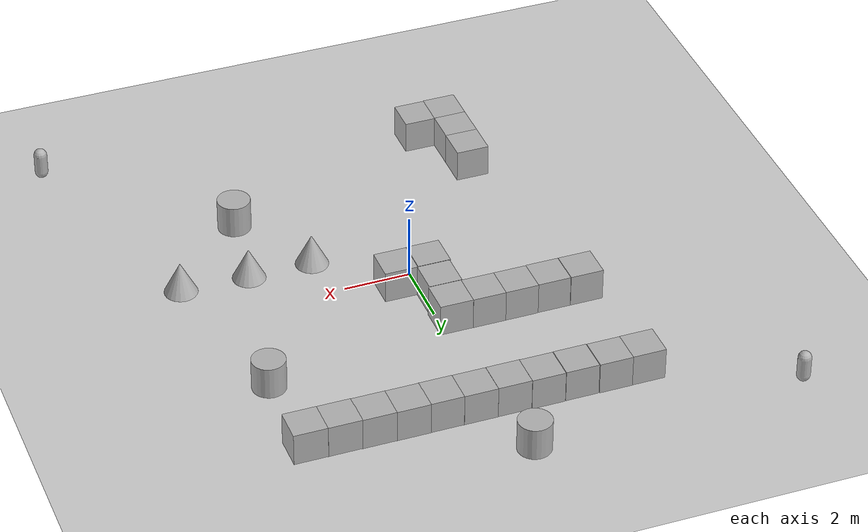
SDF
<sdf version='1.10'>
  <world name='empty'>
    <physics name='1ms' type='ignored'>
      <max_step_size>0.001</max_step_size>
      <real_time_factor>1</real_time_factor>
      <real_time_update_rate>1000</real_time_update_rate>
    </physics>
    <plugin name='gz::sim::systems::Physics' filename='gz-sim-physics-system'/>
    <plugin name='gz::sim::systems::UserCommands' filename='gz-sim-user-commands-system'/>
    <plugin name='gz::sim::systems::SceneBroadcaster' filename='gz-sim-scene-broadcaster-system'/>
    <plugin name='gz::sim::systems::Contact' filename='gz-sim-contact-system'/>
    <gravity>0 0 -9.8000000000000007</gravity>
    <magnetic_field>5.5644999999999998e-06 2.2875799999999999e-05 -4.2388400000000002e-05</magnetic_field>
    <atmosphere type='adiabatic'/>
    <scene>
      <ambient>0.400000006 0.400000006 0.400000006 1</ambient>
      <background>0.699999988 0.699999988 0.699999988 1</background>
      <shadows>true</shadows>
    </scene>
    <model name='ground_plane'>
      <static>true</static>
      <link name='link'>
        <collision name='collision'>
          <geometry>
            <plane>
              <normal>0 0 1</normal>
              <size>100 100</size>
            </plane>
          </geometry>
          <surface>
            <friction>
              <ode/>
            </friction>
            <bounce/>
            <contact/>
          </surface>
        </collision>
        <visual name='visual'>
          <geometry>
            <plane>
              <normal>0 0 1</normal>
              <size>100 100</size>
            </plane>
          </geometry>
          <material>
            <ambient>0.800000012 0.800000012 0.800000012 1</ambient>
            <diffuse>0.800000012 0.800000012 0.800000012 1</diffuse>
            <specular>0.800000012 0.800000012 0.800000012 1</specular>
          </material>
        </visual>
        <pose>0 0 0 0 0 0</pose>
        <inertial>
          <pose>0 0 0 0 0 0</pose>
          <mass>1</mass>
          <inertia>
            <ixx>1</ixx>
            <ixy>0</ixy>
            <ixz>0</ixz>
            <iyy>1</iyy>
            <iyz>0</iyz>
            <izz>1</izz>
          </inertia>
        </inertial>
        <enable_wind>false</enable_wind>
      </link>
      <pose>0 0 0 0 0 0</pose>
      <self_collide>false</self_collide>
    </model>
    <model name='box'>
      <pose>-0.33596545250959059 2.4811201095920628 0.49999999019962721 2.242095437672319e-13 2.3869852777294511e-15 -5.1521001636314449e-08</pose>
      <link name='box_link'>
        <inertial>
          <inertia>
            <ixx>0.16666</ixx>
            <ixy>0</ixy>
            <ixz>0</ixz>
            <iyy>0.16666</iyy>
            <iyz>0</iyz>
            <izz>0.16666</izz>
          </inertia>
          <mass>1</mass>
          <pose>0 0 0 0 0 0</pose>
        </inertial>
        <collision name='box_collision'>
          <geometry>
            <box>
              <size>1 1 1</size>
            </box>
          </geometry>
          <surface>
            <friction>
              <ode/>
            </friction>
            <bounce/>
            <contact/>
          </surface>
        </collision>
        <visual name='box_visual'>
          <geometry>
            <box>
              <size>1 1 1</size>
            </box>
          </geometry>
          <material>
            <ambient>0.300000012 0.300000012 0.300000012 1</ambient>
            <diffuse>0.699999988 0.699999988 0.699999988 1</diffuse>
            <specular>1 1 1 1</specular>
          </material>
        </visual>
        <pose>0 0 0 0 0 0</pose>
        <enable_wind>false</enable_wind>
      </link>
      <static>false</static>
      <self_collide>false</self_collide>
    </model>
    <model name='box_0'>
      <pose>-1.3359654523157329 2.4851484393053793 0.49999999019962615 2.2420955115424631e-13 -1.0557012305219179e-13 -5.1548484183742544e-08</pose>
      <link name='box_link'>
        <inertial>
          <inertia>
            <ixx>0.16666</ixx>
            <ixy>0</ixy>
            <ixz>0</ixz>
            <iyy>0.16666</iyy>
            <iyz>0</iyz>
            <izz>0.16666</izz>
          </inertia>
          <mass>1</mass>
          <pose>0 0 0 0 0 0</pose>
        </inertial>
        <collision name='box_collision'>
          <geometry>
            <box>
              <size>1 1 1</size>
            </box>
          </geometry>
          <surface>
            <friction>
              <ode/>
            </friction>
            <bounce/>
            <contact/>
          </surface>
        </collision>
        <visual name='box_visual'>
          <geometry>
            <box>
              <size>1 1 1</size>
            </box>
          </geometry>
          <material>
            <ambient>0.300000012 0.300000012 0.300000012 1</ambient>
            <diffuse>0.699999988 0.699999988 0.699999988 1</diffuse>
            <specular>1 1 1 1</specular>
          </material>
        </visual>
        <pose>0 0 0 0 0 0</pose>
        <enable_wind>false</enable_wind>
      </link>
      <static>false</static>
      <self_collide>false</self_collide>
    </model>
    <model name='box_1'>
      <pose>-0.37296743716899705 1.4691642643551788 0.49999999019962726 2.1770754439004316e-17 -3.3586261480345174e-17 2.3976945545769711e-19</pose>
      <link name='box_link'>
        <inertial>
          <inertia>
            <ixx>0.16666</ixx>
            <ixy>0</ixy>
            <ixz>0</ixz>
            <iyy>0.16666</iyy>
            <iyz>0</iyz>
            <izz>0.16666</izz>
          </inertia>
          <mass>1</mass>
          <pose>0 0 0 0 0 0</pose>
        </inertial>
        <collision name='box_collision'>
          <geometry>
            <box>
              <size>1 1 1</size>
            </box>
          </geometry>
          <surface>
            <friction>
              <ode/>
            </friction>
            <bounce/>
            <contact/>
          </surface>
        </collision>
        <visual name='box_visual'>
          <geometry>
            <box>
              <size>1 1 1</size>
            </box>
          </geometry>
          <material>
            <ambient>0.300000012 0.300000012 0.300000012 1</ambient>
            <diffuse>0.699999988 0.699999988 0.699999988 1</diffuse>
            <specular>1 1 1 1</specular>
          </material>
        </visual>
        <pose>0 0 0 0 0 0</pose>
        <enable_wind>false</enable_wind>
      </link>
      <static>false</static>
      <self_collide>false</self_collide>
    </model>
    <model name='capsule'>
      <pose>8.7592671357249792 -8.5141444132661235 0.49999999020000274 0 0 0</pose>
      <link name='capsule_link'>
        <inertial>
          <inertia>
            <ixx>0.074153999999999998</ixx>
            <ixy>0</ixy>
            <ixz>0</ixz>
            <iyy>0.074153999999999998</iyy>
            <iyz>0</iyz>
            <izz>0.018769000000000001</izz>
          </inertia>
          <mass>1</mass>
          <pose>0 0 0 0 0 0</pose>
        </inertial>
        <collision name='capsule_collision'>
          <geometry>
            <capsule>
              <radius>0.20000000000000001</radius>
              <length>0.59999999999999998</length>
            </capsule>
          </geometry>
          <surface>
            <friction>
              <ode/>
            </friction>
            <bounce/>
            <contact/>
          </surface>
        </collision>
        <visual name='capsule_visual'>
          <geometry>
            <capsule>
              <radius>0.20000000000000001</radius>
              <length>0.59999999999999998</length>
            </capsule>
          </geometry>
          <material>
            <ambient>0.300000012 0.300000012 0.300000012 1</ambient>
            <diffuse>0.699999988 0.699999988 0.699999988 1</diffuse>
            <specular>1 1 1 1</specular>
          </material>
        </visual>
        <pose>0 0 0 0 0 0</pose>
        <enable_wind>false</enable_wind>
      </link>
      <static>false</static>
      <self_collide>false</self_collide>
    </model>
    <model name='capsule_0'>
      <pose>-8.6555289183120294 8.4008671048290537 0.49999999020000274 0 0 0</pose>
      <link name='capsule_link'>
        <inertial>
          <inertia>
            <ixx>0.074153999999999998</ixx>
            <ixy>0</ixy>
            <ixz>0</ixz>
            <iyy>0.074153999999999998</iyy>
            <iyz>0</iyz>
            <izz>0.018769000000000001</izz>
          </inertia>
          <mass>1</mass>
          <pose>0 0 0 0 0 0</pose>
        </inertial>
        <collision name='capsule_collision'>
          <geometry>
            <capsule>
              <radius>0.20000000000000001</radius>
              <length>0.59999999999999998</length>
            </capsule>
          </geometry>
          <surface>
            <friction>
              <ode/>
            </friction>
            <bounce/>
            <contact/>
          </surface>
        </collision>
        <visual name='capsule_visual'>
          <geometry>
            <capsule>
              <radius>0.20000000000000001</radius>
              <length>0.59999999999999998</length>
            </capsule>
          </geometry>
          <material>
            <ambient>0.300000012 0.300000012 0.300000012 1</ambient>
            <diffuse>0.699999988 0.699999988 0.699999988 1</diffuse>
            <specular>1 1 1 1</specular>
          </material>
        </visual>
        <pose>0 0 0 0 0 0</pose>
        <enable_wind>false</enable_wind>
      </link>
      <static>false</static>
      <self_collide>false</self_collide>
    </model>
    <model name='cone'>
      <pose>2.4977511326347646 -1.5118125709814809 0.49999999602630424 2.1489554703592614e-09 -8.0147334127969046e-09 -5.1492329993293282e-14</pose>
      <link name='cone_link'>
        <inertial>
          <inertia>
            <ixx>0.074999999999999997</ixx>
            <ixy>0</ixy>
            <ixz>0</ixz>
            <iyy>0.074999999999999997</iyy>
            <iyz>0</iyz>
            <izz>0.074999999999999997</izz>
          </inertia>
          <mass>1</mass>
          <pose>0 0 0 0 0 0</pose>
        </inertial>
        <collision name='cone_collision'>
          <geometry>
            <cone>
              <radius>0.5</radius>
              <length>1</length>
            </cone>
          </geometry>
          <surface>
            <friction>
              <ode/>
            </friction>
            <bounce/>
            <contact/>
          </surface>
        </collision>
        <visual name='cone_visual'>
          <geometry>
            <cone>
              <radius>0.5</radius>
              <length>1</length>
            </cone>
          </geometry>
          <material>
            <ambient>0.300000012 0.300000012 0.300000012 1</ambient>
            <diffuse>0.699999988 0.699999988 0.699999988 1</diffuse>
            <specular>1 1 1 1</specular>
          </material>
        </visual>
        <pose>0 0 0 0 0 0</pose>
        <enable_wind>false</enable_wind>
      </link>
      <static>false</static>
      <self_collide>false</self_collide>
    </model>
    <model name='cone_0'>
      <pose>4.4396736091283202 -1.4943664519272066 0.49999999602630363 2.1494453750432996e-09 -8.0146077728528373e-09 -4.82051379767119e-14</pose>
      <link name='cone_link'>
        <inertial>
          <inertia>
            <ixx>0.074999999999999997</ixx>
            <ixy>0</ixy>
            <ixz>0</ixz>
            <iyy>0.074999999999999997</iyy>
            <iyz>0</iyz>
            <izz>0.074999999999999997</izz>
          </inertia>
          <mass>1</mass>
          <pose>0 0 0 0 0 0</pose>
        </inertial>
        <collision name='cone_collision'>
          <geometry>
            <cone>
              <radius>0.5</radius>
              <length>1</length>
            </cone>
          </geometry>
          <surface>
            <friction>
              <ode/>
            </friction>
            <bounce/>
            <contact/>
          </surface>
        </collision>
        <visual name='cone_visual'>
          <geometry>
            <cone>
              <radius>0.5</radius>
              <length>1</length>
            </cone>
          </geometry>
          <material>
            <ambient>0.300000012 0.300000012 0.300000012 1</ambient>
            <diffuse>0.699999988 0.699999988 0.699999988 1</diffuse>
            <specular>1 1 1 1</specular>
          </material>
        </visual>
        <pose>0 0 0 0 0 0</pose>
        <enable_wind>false</enable_wind>
      </link>
      <static>false</static>
      <self_collide>false</self_collide>
    </model>
    <model name='cone_1'>
      <pose>6.5001473864445005 -1.5436023458058492 0.49999999602630363 2.1494771420297308e-09 -8.0145996413770159e-09 -4.7070557221802464e-14</pose>
      <link name='cone_link'>
        <inertial>
          <inertia>
            <ixx>0.074999999999999997</ixx>
            <ixy>0</ixy>
            <ixz>0</ixz>
            <iyy>0.074999999999999997</iyy>
            <iyz>0</iyz>
            <izz>0.074999999999999997</izz>
          </inertia>
          <mass>1</mass>
          <pose>0 0 0 0 0 0</pose>
        </inertial>
        <collision name='cone_collision'>
          <geometry>
            <cone>
              <radius>0.5</radius>
              <length>1</length>
            </cone>
          </geometry>
          <surface>
            <friction>
              <ode/>
            </friction>
            <bounce/>
            <contact/>
          </surface>
        </collision>
        <visual name='cone_visual'>
          <geometry>
            <cone>
              <radius>0.5</radius>
              <length>1</length>
            </cone>
          </geometry>
          <material>
            <ambient>0.300000012 0.300000012 0.300000012 1</ambient>
            <diffuse>0.699999988 0.699999988 0.699999988 1</diffuse>
            <specular>1 1 1 1</specular>
          </material>
        </visual>
        <pose>0 0 0 0 0 0</pose>
        <enable_wind>false</enable_wind>
      </link>
      <static>false</static>
      <self_collide>false</self_collide>
    </model>
    <model name='box_2'>
      <pose>-2.3359654524921076 2.4833659230877334 0.49999999019962782 2.2305660428055508e-13 -2.2569622019433922e-13 -5.1717338985230688e-08</pose>
      <link name='box_link'>
        <inertial>
          <inertia>
            <ixx>0.16666</ixx>
            <ixy>0</ixy>
            <ixz>0</ixz>
            <iyy>0.16666</iyy>
            <iyz>0</iyz>
            <izz>0.16666</izz>
          </inertia>
          <mass>1</mass>
          <pose>0 0 0 0 0 0</pose>
        </inertial>
        <collision name='box_collision'>
          <geometry>
            <box>
              <size>1 1 1</size>
            </box>
          </geometry>
          <surface>
            <friction>
              <ode/>
            </friction>
            <bounce/>
            <contact/>
          </surface>
        </collision>
        <visual name='box_visual'>
          <geometry>
            <box>
              <size>1 1 1</size>
            </box>
          </geometry>
          <material>
            <ambient>0.300000012 0.300000012 0.300000012 1</ambient>
            <diffuse>0.699999988 0.699999988 0.699999988 1</diffuse>
            <specular>1 1 1 1</specular>
          </material>
        </visual>
        <pose>0 0 0 0 0 0</pose>
        <enable_wind>false</enable_wind>
      </link>
      <static>false</static>
      <self_collide>false</self_collide>
    </model>
    <model name='box_3'>
      <pose>-3.3359654531370913 2.4712875754110573 0.49999999019962715 2.2370993964954966e-13 -2.2376543762439209e-13 -5.1749545389140747e-08</pose>
      <link name='box_link'>
        <inertial>
          <inertia>
            <ixx>0.16666</ixx>
            <ixy>0</ixy>
            <ixz>0</ixz>
            <iyy>0.16666</iyy>
            <iyz>0</iyz>
            <izz>0.16666</izz>
          </inertia>
          <mass>1</mass>
          <pose>0 0 0 0 0 0</pose>
        </inertial>
        <collision name='box_collision'>
          <geometry>
            <box>
              <size>1 1 1</size>
            </box>
          </geometry>
          <surface>
            <friction>
              <ode/>
            </friction>
            <bounce/>
            <contact/>
          </surface>
        </collision>
        <visual name='box_visual'>
          <geometry>
            <box>
              <size>1 1 1</size>
            </box>
          </geometry>
          <material>
            <ambient>0.300000012 0.300000012 0.300000012 1</ambient>
            <diffuse>0.699999988 0.699999988 0.699999988 1</diffuse>
            <specular>1 1 1 1</specular>
          </material>
        </visual>
        <pose>0 0 0 0 0 0</pose>
        <enable_wind>false</enable_wind>
      </link>
      <static>false</static>
      <self_collide>false</self_collide>
    </model>
    <model name='box_4'>
      <pose>-4.3463044166564941 2.4707798957824707 0.49999999019962754 2.5230195981435039e-17 -2.9315716895362591e-17 2.5538054207492607e-18</pose>
      <link name='box_link'>
        <inertial>
          <inertia>
            <ixx>0.16666</ixx>
            <ixy>0</ixy>
            <ixz>0</ixz>
            <iyy>0.16666</iyy>
            <iyz>0</iyz>
            <izz>0.16666</izz>
          </inertia>
          <mass>1</mass>
          <pose>0 0 0 0 0 0</pose>
        </inertial>
        <collision name='box_collision'>
          <geometry>
            <box>
              <size>1 1 1</size>
            </box>
          </geometry>
          <surface>
            <friction>
              <ode/>
            </friction>
            <bounce/>
            <contact/>
          </surface>
        </collision>
        <visual name='box_visual'>
          <geometry>
            <box>
              <size>1 1 1</size>
            </box>
          </geometry>
          <material>
            <ambient>0.300000012 0.300000012 0.300000012 1</ambient>
            <diffuse>0.699999988 0.699999988 0.699999988 1</diffuse>
            <specular>1 1 1 1</specular>
          </material>
        </visual>
        <pose>0 0 0 0 0 0</pose>
        <enable_wind>false</enable_wind>
      </link>
      <static>false</static>
      <self_collide>false</self_collide>
    </model>
    <model name='box_5'>
      <pose>-0.40728089213371277 0.45353400707244873 0.49999999019962704 2.3358805604223399e-17 -3.120199778265037e-17 3.6852881630897788e-18</pose>
      <link name='box_link'>
        <inertial>
          <inertia>
            <ixx>0.16666</ixx>
            <ixy>0</ixy>
            <ixz>0</ixz>
            <iyy>0.16666</iyy>
            <iyz>0</iyz>
            <izz>0.16666</izz>
          </inertia>
          <mass>1</mass>
          <pose>0 0 0 0 0 0</pose>
        </inertial>
        <collision name='box_collision'>
          <geometry>
            <box>
              <size>1 1 1</size>
            </box>
          </geometry>
          <surface>
            <friction>
              <ode/>
            </friction>
            <bounce/>
            <contact/>
          </surface>
        </collision>
        <visual name='box_visual'>
          <geometry>
            <box>
              <size>1 1 1</size>
            </box>
          </geometry>
          <material>
            <ambient>0.300000012 0.300000012 0.300000012 1</ambient>
            <diffuse>0.699999988 0.699999988 0.699999988 1</diffuse>
            <specular>1 1 1 1</specular>
          </material>
        </visual>
        <pose>0 0 0 0 0 0</pose>
        <enable_wind>false</enable_wind>
      </link>
      <static>false</static>
      <self_collide>false</self_collide>
    </model>
    <model name='box_6'>
      <pose>0.60681277513504028 0.47084900736808777 0.5 6.2287699769798697e-22 9.3279699610216593e-22 -3.6315500810484951e-22</pose>
      <link name='box_link'>
        <inertial>
          <inertia>
            <ixx>0.16666</ixx>
            <ixy>0</ixy>
            <ixz>0</ixz>
            <iyy>0.16666</iyy>
            <iyz>0</iyz>
            <izz>0.16666</izz>
          </inertia>
          <mass>1</mass>
          <pose>0 0 0 0 0 0</pose>
        </inertial>
        <collision name='box_collision'>
          <geometry>
            <box>
              <size>1 1 1</size>
            </box>
          </geometry>
          <surface>
            <friction>
              <ode/>
            </friction>
            <bounce/>
            <contact/>
          </surface>
        </collision>
        <visual name='box_visual'>
          <geometry>
            <box>
              <size>1 1 1</size>
            </box>
          </geometry>
          <material>
            <ambient>0.300000012 0.300000012 0.300000012 1</ambient>
            <diffuse>0.699999988 0.699999988 0.699999988 1</diffuse>
            <specular>1 1 1 1</specular>
          </material>
        </visual>
        <pose>0 0 0 0 0 0</pose>
        <enable_wind>false</enable_wind>
      </link>
      <static>false</static>
      <self_collide>false</self_collide>
    </model>
    <model name='cylinder'>
      <pose>5.4907534160348632 3.519235485374498 0.49999999631413172 -7.5946664308398961e-18 7.3088514030288262e-17 5.3191317590443745e-17</pose>
      <link name='cylinder_link'>
        <inertial>
          <inertia>
            <ixx>0.14580000000000001</ixx>
            <ixy>0</ixy>
            <ixz>0</ixz>
            <iyy>0.14580000000000001</iyy>
            <iyz>0</iyz>
            <izz>0.125</izz>
          </inertia>
          <mass>1</mass>
          <pose>0 0 0 0 0 0</pose>
        </inertial>
        <collision name='cylinder_collision'>
          <geometry>
            <cylinder>
              <radius>0.5</radius>
              <length>1</length>
            </cylinder>
          </geometry>
          <surface>
            <friction>
              <ode/>
            </friction>
            <bounce/>
            <contact/>
          </surface>
        </collision>
        <visual name='cylinder_visual'>
          <geometry>
            <cylinder>
              <radius>0.5</radius>
              <length>1</length>
            </cylinder>
          </geometry>
          <material>
            <ambient>0.300000012 0.300000012 0.300000012 1</ambient>
            <diffuse>0.699999988 0.699999988 0.699999988 1</diffuse>
            <specular>1 1 1 1</specular>
          </material>
        </visual>
        <pose>0 0 0 0 0 0</pose>
        <enable_wind>false</enable_wind>
      </link>
      <static>false</static>
      <self_collide>false</self_collide>
    </model>
    <model name='box_7'>
      <pose>-4.5675276861687983 6.4598668778582491 0.49999999019962688 8.0043992369080798e-14 -2.2705707415559755e-13 -7.3006152920895472e-08</pose>
      <link name='box_link'>
        <inertial>
          <inertia>
            <ixx>0.16666</ixx>
            <ixy>0</ixy>
            <ixz>0</ixz>
            <iyy>0.16666</iyy>
            <iyz>0</iyz>
            <izz>0.16666</izz>
          </inertia>
          <mass>1</mass>
          <pose>0 0 0 0 0 0</pose>
        </inertial>
        <collision name='box_collision'>
          <geometry>
            <box>
              <size>1 1 1</size>
            </box>
          </geometry>
          <surface>
            <friction>
              <ode/>
            </friction>
            <bounce/>
            <contact/>
          </surface>
        </collision>
        <visual name='box_visual'>
          <geometry>
            <box>
              <size>1 1 1</size>
            </box>
          </geometry>
          <material>
            <ambient>0.300000012 0.300000012 0.300000012 1</ambient>
            <diffuse>0.699999988 0.699999988 0.699999988 1</diffuse>
            <specular>1 1 1 1</specular>
          </material>
        </visual>
        <pose>0 0 0 0 0 0</pose>
        <enable_wind>false</enable_wind>
      </link>
      <static>false</static>
      <self_collide>false</self_collide>
    </model>
    <model name='box_8'>
      <pose>-3.5675276856778355 6.4665899279176431 0.49999999019962699 1.2378993719388495e-14 2.2339311803314102e-13 -7.3006148084250866e-08</pose>
      <link name='box_link'>
        <inertial>
          <inertia>
            <ixx>0.16666</ixx>
            <ixy>0</ixy>
            <ixz>0</ixz>
            <iyy>0.16666</iyy>
            <iyz>0</iyz>
            <izz>0.16666</izz>
          </inertia>
          <mass>1</mass>
          <pose>0 0 0 0 0 0</pose>
        </inertial>
        <collision name='box_collision'>
          <geometry>
            <box>
              <size>1 1 1</size>
            </box>
          </geometry>
          <surface>
            <friction>
              <ode/>
            </friction>
            <bounce/>
            <contact/>
          </surface>
        </collision>
        <visual name='box_visual'>
          <geometry>
            <box>
              <size>1 1 1</size>
            </box>
          </geometry>
          <material>
            <ambient>0.300000012 0.300000012 0.300000012 1</ambient>
            <diffuse>0.699999988 0.699999988 0.699999988 1</diffuse>
            <specular>1 1 1 1</specular>
          </material>
        </visual>
        <pose>0 0 0 0 0 0</pose>
        <enable_wind>false</enable_wind>
      </link>
      <static>false</static>
      <self_collide>false</self_collide>
    </model>
    <model name='box_7_1'>
      <pose>-2.5548178387117222 6.4571489892305376 0.49999999019962665 -5.5317309784386949e-17 9.6036477073617846e-20 -1.2395702982048528e-17</pose>
      <link name='box_link'>
        <inertial>
          <inertia>
            <ixx>0.16666</ixx>
            <ixy>0</ixy>
            <ixz>0</ixz>
            <iyy>0.16666</iyy>
            <iyz>0</iyz>
            <izz>0.16666</izz>
          </inertia>
          <mass>1</mass>
        </inertial>
        <collision name='box_collision'>
          <geometry>
            <box>
              <size>1 1 1</size>
            </box>
          </geometry>
          <surface>
            <friction>
              <ode/>
            </friction>
            <bounce/>
            <contact/>
          </surface>
        </collision>
        <visual name='box_visual'>
          <geometry>
            <box>
              <size>1 1 1</size>
            </box>
          </geometry>
          <material>
            <ambient>0.300000012 0.300000012 0.300000012 1</ambient>
            <diffuse>0.699999988 0.699999988 0.699999988 1</diffuse>
            <specular>1 1 1 1</specular>
          </material>
        </visual>
      </link>
      <static>false</static>
      <self_collide>false</self_collide>
    </model>
    <model name='box_7_2'>
      <pose>-1.5400376601061829 6.4675635702781289 0.49999999019962588 -5.4787639723940085e-17 1.0732275212462462e-19 -1.1898572155675124e-17</pose>
      <link name='box_link'>
        <inertial>
          <inertia>
            <ixx>0.16666</ixx>
            <ixy>0</ixy>
            <ixz>0</ixz>
            <iyy>0.16666</iyy>
            <iyz>0</iyz>
            <izz>0.16666</izz>
          </inertia>
          <mass>1</mass>
        </inertial>
        <collision name='box_collision'>
          <geometry>
            <box>
              <size>1 1 1</size>
            </box>
          </geometry>
          <surface>
            <friction>
              <ode/>
            </friction>
            <bounce/>
            <contact/>
          </surface>
        </collision>
        <visual name='box_visual'>
          <geometry>
            <box>
              <size>1 1 1</size>
            </box>
          </geometry>
          <material>
            <ambient>0.300000012 0.300000012 0.300000012 1</ambient>
            <diffuse>0.699999988 0.699999988 0.699999988 1</diffuse>
            <specular>1 1 1 1</specular>
          </material>
        </visual>
      </link>
      <static>false</static>
      <self_collide>false</self_collide>
    </model>
    <model name='box_9'>
      <pose>5.4184012413024902 6.4368500709533691 0.5 0 0 0</pose>
      <link name='box_link'>
        <inertial>
          <inertia>
            <ixx>0.16666</ixx>
            <ixy>0</ixy>
            <ixz>0</ixz>
            <iyy>0.16666</iyy>
            <iyz>0</iyz>
            <izz>0.16666</izz>
          </inertia>
          <mass>1</mass>
          <pose>0 0 0 0 0 0</pose>
        </inertial>
        <collision name='box_collision'>
          <geometry>
            <box>
              <size>1 1 1</size>
            </box>
          </geometry>
          <surface>
            <friction>
              <ode/>
            </friction>
            <bounce/>
            <contact/>
          </surface>
        </collision>
        <visual name='box_visual'>
          <geometry>
            <box>
              <size>1 1 1</size>
            </box>
          </geometry>
          <material>
            <ambient>0.300000012 0.300000012 0.300000012 1</ambient>
            <diffuse>0.699999988 0.699999988 0.699999988 1</diffuse>
            <specular>1 1 1 1</specular>
          </material>
        </visual>
        <pose>0 0 0 0 0 0</pose>
        <enable_wind>false</enable_wind>
      </link>
      <static>false</static>
      <self_collide>false</self_collide>
    </model>
    <model name='box_10'>
      <pose>-0.53922793804994595 6.4562740429011205 0.5 0 0 0</pose>
      <link name='box_link'>
        <inertial>
          <inertia>
            <ixx>0.16666</ixx>
            <ixy>0</ixy>
            <ixz>0</ixz>
            <iyy>0.16666</iyy>
            <iyz>0</iyz>
            <izz>0.16666</izz>
          </inertia>
          <mass>1</mass>
          <pose>0 0 0 0 0 0</pose>
        </inertial>
        <collision name='box_collision'>
          <geometry>
            <box>
              <size>1 1 1</size>
            </box>
          </geometry>
          <surface>
            <friction>
              <ode/>
            </friction>
            <bounce/>
            <contact/>
          </surface>
        </collision>
        <visual name='box_visual'>
          <geometry>
            <box>
              <size>1 1 1</size>
            </box>
          </geometry>
          <material>
            <ambient>0.300000012 0.300000012 0.300000012 1</ambient>
            <diffuse>0.699999988 0.699999988 0.699999988 1</diffuse>
            <specular>1 1 1 1</specular>
          </material>
        </visual>
        <pose>0 0 0 0 0 0</pose>
        <enable_wind>false</enable_wind>
      </link>
      <static>false</static>
      <self_collide>false</self_collide>
    </model>
    <model name='box_11'>
      <pose>0.46336798527815626 6.4604100132330275 0.5 0 0 0</pose>
      <link name='box_link'>
        <inertial>
          <inertia>
            <ixx>0.16666</ixx>
            <ixy>0</ixy>
            <ixz>0</ixz>
            <iyy>0.16666</iyy>
            <iyz>0</iyz>
            <izz>0.16666</izz>
          </inertia>
          <mass>1</mass>
          <pose>0 0 0 0 0 0</pose>
        </inertial>
        <collision name='box_collision'>
          <geometry>
            <box>
              <size>1 1 1</size>
            </box>
          </geometry>
          <surface>
            <friction>
              <ode/>
            </friction>
            <bounce/>
            <contact/>
          </surface>
        </collision>
        <visual name='box_visual'>
          <geometry>
            <box>
              <size>1 1 1</size>
            </box>
          </geometry>
          <material>
            <ambient>0.300000012 0.300000012 0.300000012 1</ambient>
            <diffuse>0.699999988 0.699999988 0.699999988 1</diffuse>
            <specular>1 1 1 1</specular>
          </material>
        </visual>
        <pose>0 0 0 0 0 0</pose>
        <enable_wind>false</enable_wind>
      </link>
      <static>false</static>
      <self_collide>false</self_collide>
    </model>
    <model name='box_12'>
      <pose>1.4455749367730419 6.4535593453943978 0.5 0 0 0</pose>
      <link name='box_link'>
        <inertial>
          <inertia>
            <ixx>0.16666</ixx>
            <ixy>0</ixy>
            <ixz>0</ixz>
            <iyy>0.16666</iyy>
            <iyz>0</iyz>
            <izz>0.16666</izz>
          </inertia>
          <mass>1</mass>
          <pose>0 0 0 0 0 0</pose>
        </inertial>
        <collision name='box_collision'>
          <geometry>
            <box>
              <size>1 1 1</size>
            </box>
          </geometry>
          <surface>
            <friction>
              <ode/>
            </friction>
            <bounce/>
            <contact/>
          </surface>
        </collision>
        <visual name='box_visual'>
          <geometry>
            <box>
              <size>1 1 1</size>
            </box>
          </geometry>
          <material>
            <ambient>0.300000012 0.300000012 0.300000012 1</ambient>
            <diffuse>0.699999988 0.699999988 0.699999988 1</diffuse>
            <specular>1 1 1 1</specular>
          </material>
        </visual>
        <pose>0 0 0 0 0 0</pose>
        <enable_wind>false</enable_wind>
      </link>
      <static>false</static>
      <self_collide>false</self_collide>
    </model>
    <model name='box_13'>
      <pose>2.438651182665998 6.4606898132804345 0.5 0 0 0</pose>
      <link name='box_link'>
        <inertial>
          <inertia>
            <ixx>0.16666</ixx>
            <ixy>0</ixy>
            <ixz>0</ixz>
            <iyy>0.16666</iyy>
            <iyz>0</iyz>
            <izz>0.16666</izz>
          </inertia>
          <mass>1</mass>
          <pose>0 0 0 0 0 0</pose>
        </inertial>
        <collision name='box_collision'>
          <geometry>
            <box>
              <size>1 1 1</size>
            </box>
          </geometry>
          <surface>
            <friction>
              <ode/>
            </friction>
            <bounce/>
            <contact/>
          </surface>
        </collision>
        <visual name='box_visual'>
          <geometry>
            <box>
              <size>1 1 1</size>
            </box>
          </geometry>
          <material>
            <ambient>0.300000012 0.300000012 0.300000012 1</ambient>
            <diffuse>0.699999988 0.699999988 0.699999988 1</diffuse>
            <specular>1 1 1 1</specular>
          </material>
        </visual>
        <pose>0 0 0 0 0 0</pose>
        <enable_wind>false</enable_wind>
      </link>
      <static>false</static>
      <self_collide>false</self_collide>
    </model>
    <model name='box_14'>
      <pose>3.4339363442302178 6.4536198440122643 0.5 0 0 0</pose>
      <link name='box_link'>
        <inertial>
          <inertia>
            <ixx>0.16666</ixx>
            <ixy>0</ixy>
            <ixz>0</ixz>
            <iyy>0.16666</iyy>
            <iyz>0</iyz>
            <izz>0.16666</izz>
          </inertia>
          <mass>1</mass>
          <pose>0 0 0 0 0 0</pose>
        </inertial>
        <collision name='box_collision'>
          <geometry>
            <box>
              <size>1 1 1</size>
            </box>
          </geometry>
          <surface>
            <friction>
              <ode/>
            </friction>
            <bounce/>
            <contact/>
          </surface>
        </collision>
        <visual name='box_visual'>
          <geometry>
            <box>
              <size>1 1 1</size>
            </box>
          </geometry>
          <material>
            <ambient>0.300000012 0.300000012 0.300000012 1</ambient>
            <diffuse>0.699999988 0.699999988 0.699999988 1</diffuse>
            <specular>1 1 1 1</specular>
          </material>
        </visual>
        <pose>0 0 0 0 0 0</pose>
        <enable_wind>false</enable_wind>
      </link>
      <static>false</static>
      <self_collide>false</self_collide>
    </model>
    <model name='box_15'>
      <pose>4.4201254291431562 6.4417940762776915 0.5 0 0 0</pose>
      <link name='box_link'>
        <inertial>
          <inertia>
            <ixx>0.16666</ixx>
            <ixy>0</ixy>
            <ixz>0</ixz>
            <iyy>0.16666</iyy>
            <iyz>0</iyz>
            <izz>0.16666</izz>
          </inertia>
          <mass>1</mass>
          <pose>0 0 0 0 0 0</pose>
        </inertial>
        <collision name='box_collision'>
          <geometry>
            <box>
              <size>1 1 1</size>
            </box>
          </geometry>
          <surface>
            <friction>
              <ode/>
            </friction>
            <bounce/>
            <contact/>
          </surface>
        </collision>
        <visual name='box_visual'>
          <geometry>
            <box>
              <size>1 1 1</size>
            </box>
          </geometry>
          <material>
            <ambient>0.300000012 0.300000012 0.300000012 1</ambient>
            <diffuse>0.699999988 0.699999988 0.699999988 1</diffuse>
            <specular>1 1 1 1</specular>
          </material>
        </visual>
        <pose>0 0 0 0 0 0</pose>
        <enable_wind>false</enable_wind>
      </link>
      <static>false</static>
      <self_collide>false</self_collide>
    </model>
    <model name='cylinder_0'>
      <pose>-0.48157798367632321 8.5377876966427237 0.5 0 0 0</pose>
      <link name='cylinder_link'>
        <inertial>
          <inertia>
            <ixx>0.14580000000000001</ixx>
            <ixy>0</ixy>
            <ixz>0</ixz>
            <iyy>0.14580000000000001</iyy>
            <iyz>0</iyz>
            <izz>0.125</izz>
          </inertia>
          <mass>1</mass>
          <pose>0 0 0 0 0 0</pose>
        </inertial>
        <collision name='cylinder_collision'>
          <geometry>
            <cylinder>
              <radius>0.5</radius>
              <length>1</length>
            </cylinder>
          </geometry>
          <surface>
            <friction>
              <ode/>
            </friction>
            <bounce/>
            <contact/>
          </surface>
        </collision>
        <visual name='cylinder_visual'>
          <geometry>
            <cylinder>
              <radius>0.5</radius>
              <length>1</length>
            </cylinder>
          </geometry>
          <material>
            <ambient>0.300000012 0.300000012 0.300000012 1</ambient>
            <diffuse>0.699999988 0.699999988 0.699999988 1</diffuse>
            <specular>1 1 1 1</specular>
          </material>
        </visual>
        <pose>0 0 0 0 0 0</pose>
        <enable_wind>false</enable_wind>
      </link>
      <static>false</static>
      <self_collide>false</self_collide>
    </model>
    <model name='box_16'>
      <pose>-3.5027442542491212 -4.4639696817413039 0.5 0 0 0</pose>
      <link name='box_link'>
        <inertial>
          <inertia>
            <ixx>0.16666</ixx>
            <ixy>0</ixy>
            <ixz>0</ixz>
            <iyy>0.16666</iyy>
            <iyz>0</iyz>
            <izz>0.16666</izz>
          </inertia>
          <mass>1</mass>
          <pose>0 0 0 0 0 0</pose>
        </inertial>
        <collision name='box_collision'>
          <geometry>
            <box>
              <size>1 1 1</size>
            </box>
          </geometry>
          <surface>
            <friction>
              <ode/>
            </friction>
            <bounce/>
            <contact/>
          </surface>
        </collision>
        <visual name='box_visual'>
          <geometry>
            <box>
              <size>1 1 1</size>
            </box>
          </geometry>
          <material>
            <ambient>0.300000012 0.300000012 0.300000012 1</ambient>
            <diffuse>0.699999988 0.699999988 0.699999988 1</diffuse>
            <specular>1 1 1 1</specular>
          </material>
        </visual>
        <pose>0 0 0 0 0 0</pose>
        <enable_wind>false</enable_wind>
      </link>
      <static>false</static>
      <self_collide>false</self_collide>
    </model>
    <model name='cylinder_1'>
      <pose>4.0693188608994628 -4.023768750762061 0.5 0 0 0</pose>
      <link name='cylinder_link'>
        <inertial>
          <inertia>
            <ixx>0.14580000000000001</ixx>
            <ixy>0</ixy>
            <ixz>0</ixz>
            <iyy>0.14580000000000001</iyy>
            <iyz>0</iyz>
            <izz>0.125</izz>
          </inertia>
          <mass>1</mass>
          <pose>0 0 0 0 0 0</pose>
        </inertial>
        <collision name='cylinder_collision'>
          <geometry>
            <cylinder>
              <radius>0.5</radius>
              <length>1</length>
            </cylinder>
          </geometry>
          <surface>
            <friction>
              <ode/>
            </friction>
            <bounce/>
            <contact/>
          </surface>
        </collision>
        <visual name='cylinder_visual'>
          <geometry>
            <cylinder>
              <radius>0.5</radius>
              <length>1</length>
            </cylinder>
          </geometry>
          <material>
            <ambient>0.300000012 0.300000012 0.300000012 1</ambient>
            <diffuse>0.699999988 0.699999988 0.699999988 1</diffuse>
            <specular>1 1 1 1</specular>
          </material>
        </visual>
        <pose>0 0 0 0 0 0</pose>
        <enable_wind>false</enable_wind>
      </link>
      <static>false</static>
      <self_collide>false</self_collide>
    </model>
    <model name='box_17'>
      <pose>-3.5044265949758415 -5.4565770068717425 0.5 0 0 0</pose>
      <link name='box_link'>
        <inertial>
          <inertia>
            <ixx>0.16666</ixx>
            <ixy>0</ixy>
            <ixz>0</ixz>
            <iyy>0.16666</iyy>
            <iyz>0</iyz>
            <izz>0.16666</izz>
          </inertia>
          <mass>1</mass>
          <pose>0 0 0 0 0 0</pose>
        </inertial>
        <collision name='box_collision'>
          <geometry>
            <box>
              <size>1 1 1</size>
            </box>
          </geometry>
          <surface>
            <friction>
              <ode/>
            </friction>
            <bounce/>
            <contact/>
          </surface>
        </collision>
        <visual name='box_visual'>
          <geometry>
            <box>
              <size>1 1 1</size>
            </box>
          </geometry>
          <material>
            <ambient>0.300000012 0.300000012 0.300000012 1</ambient>
            <diffuse>0.699999988 0.699999988 0.699999988 1</diffuse>
            <specular>1 1 1 1</specular>
          </material>
        </visual>
        <pose>0 0 0 0 0 0</pose>
        <enable_wind>false</enable_wind>
      </link>
      <static>false</static>
      <self_collide>false</self_collide>
    </model>
    <model name='box_18'>
      <pose>-3.508170612317012 -6.4515013675472845 0.5 0 0 0</pose>
      <link name='box_link'>
        <inertial>
          <inertia>
            <ixx>0.16666</ixx>
            <ixy>0</ixy>
            <ixz>0</ixz>
            <iyy>0.16666</iyy>
            <iyz>0</iyz>
            <izz>0.16666</izz>
          </inertia>
          <mass>1</mass>
          <pose>0 0 0 0 0 0</pose>
        </inertial>
        <collision name='box_collision'>
          <geometry>
            <box>
              <size>1 1 1</size>
            </box>
          </geometry>
          <surface>
            <friction>
              <ode/>
            </friction>
            <bounce/>
            <contact/>
          </surface>
        </collision>
        <visual name='box_visual'>
          <geometry>
            <box>
              <size>1 1 1</size>
            </box>
          </geometry>
          <material>
            <ambient>0.300000012 0.300000012 0.300000012 1</ambient>
            <diffuse>0.699999988 0.699999988 0.699999988 1</diffuse>
            <specular>1 1 1 1</specular>
          </material>
        </visual>
        <pose>0 0 0 0 0 0</pose>
        <enable_wind>false</enable_wind>
      </link>
      <static>false</static>
      <self_collide>false</self_collide>
    </model>
    <model name='box_19'>
      <pose>-2.569902487134776 -6.4310525738926128 0.5 0 0 0</pose>
      <link name='box_link'>
        <inertial>
          <inertia>
            <ixx>0.16666</ixx>
            <ixy>0</ixy>
            <ixz>0</ixz>
            <iyy>0.16666</iyy>
            <iyz>0</iyz>
            <izz>0.16666</izz>
          </inertia>
          <mass>1</mass>
          <pose>0 0 0 0 0 0</pose>
        </inertial>
        <collision name='box_collision'>
          <geometry>
            <box>
              <size>1 1 1</size>
            </box>
          </geometry>
          <surface>
            <friction>
              <ode/>
            </friction>
            <bounce/>
            <contact/>
          </surface>
        </collision>
        <visual name='box_visual'>
          <geometry>
            <box>
              <size>1 1 1</size>
            </box>
          </geometry>
          <material>
            <ambient>0.300000012 0.300000012 0.300000012 1</ambient>
            <diffuse>0.699999988 0.699999988 0.699999988 1</diffuse>
            <specular>1 1 1 1</specular>
          </material>
        </visual>
        <pose>0 0 0 0 0 0</pose>
        <enable_wind>false</enable_wind>
      </link>
      <static>false</static>
      <self_collide>false</self_collide>
    </model>
    <light name='sun' type='directional'>
      <pose>0 0 10 0 0 0</pose>
      <cast_shadows>true</cast_shadows>
      <intensity>1</intensity>
      <direction>-0.5 0.10000000000000001 -0.90000000000000002</direction>
      <diffuse>0.800000012 0.800000012 0.800000012 1</diffuse>
      <specular>0.200000003 0.200000003 0.200000003 1</specular>
      <attenuation>
        <range>1000</range>
        <linear>0.0099999997764825821</linear>
        <constant>0.89999997615814209</constant>
        <quadratic>0.0010000000474974513</quadratic>
      </attenuation>
      <spot>
        <inner_angle>0</inner_angle>
        <outer_angle>0</outer_angle>
        <falloff>0</falloff>
      </spot>
    </light>
  </world>
</sdf>
